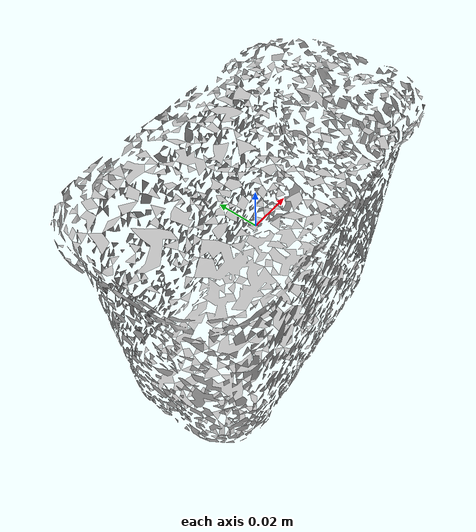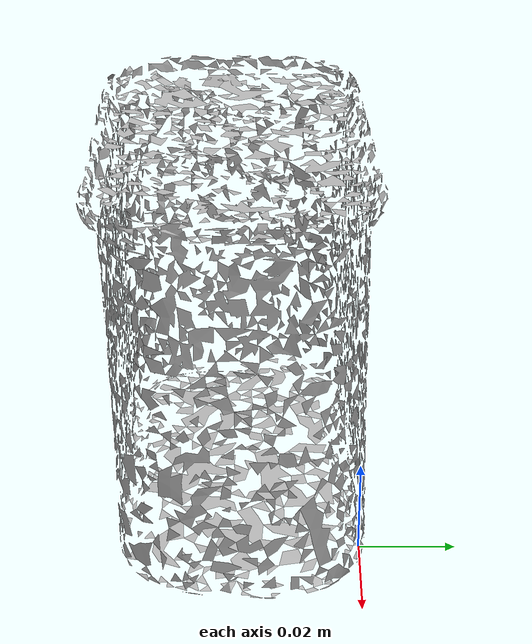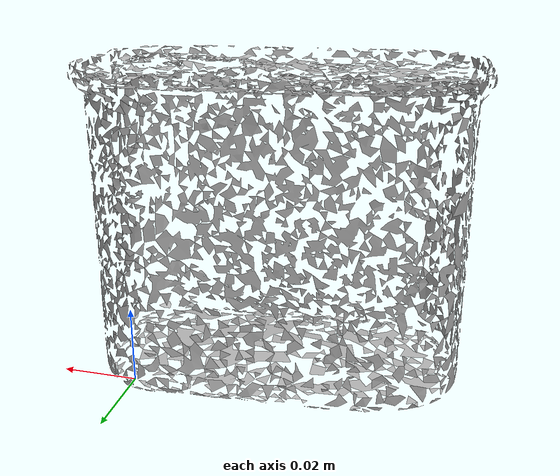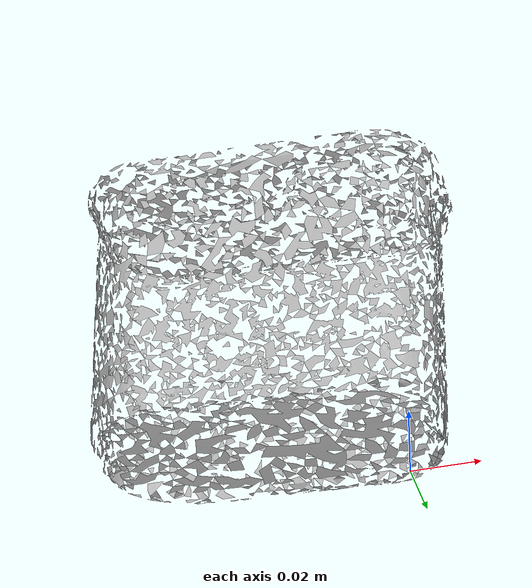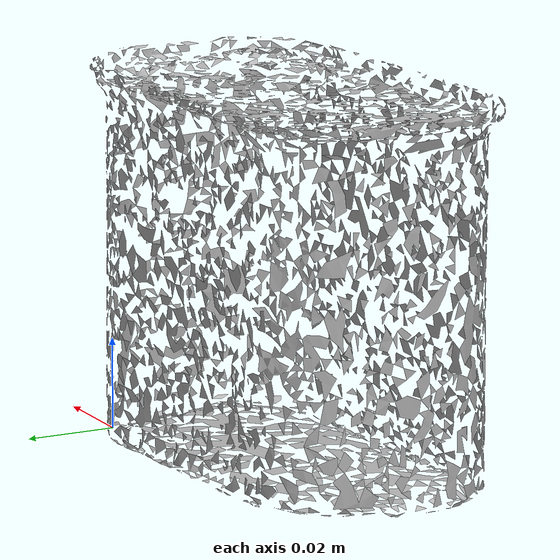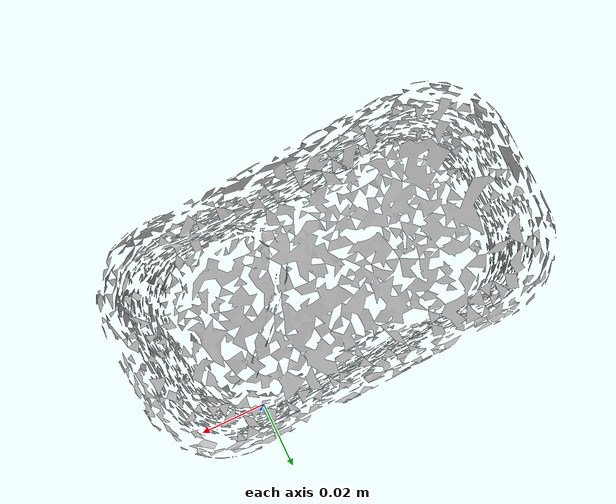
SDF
<?xml version='1.0'?>
<sdf version="1.4">
  <model name="potted_meat_can">
    <static>false</static>
    <link name="link">
      <inertial>
        <pose>-0.032840352216858736 -0.02635271439745596 0.03783085009135961 -1.577430392595329 -0.010759772887280422 1.6258710123374907</pose>
        <mass>0.37</mass>
        <inertia>
          <ixx>4.287366513749583e-07</ixx>
          <ixy>-3.523230610574534e-23</ixy>
          <ixz>-6.42864356711676e-24</ixz>
          <iyy>3.228086963634995e-07</iyy>
          <iyz>-7.370448672335376e-25</iyz>
          <izz>2.4925393166117206e-07</izz>
        </inertia>
      </inertial>
      <collision name="collision">
        <geometry>
          <mesh>
            <!-- Use a downsampled mesh for collisions -->
            <uri>model://010_potted_meat_can/downsampled.obj</uri>
	        </mesh>
        </geometry>
        <surface>
          <friction>
            <ode>
              <mu>0.8</mu>
              <mu2>0.6</mu2>
            </ode>
          </friction>
        </surface>
      </collision>
      <visual name="visual">
        <geometry>
          <mesh>
            <uri>model://010_potted_meat_can/google_16k/textured.obj</uri>
	        </mesh>
        </geometry>
        <material>
          <script>
            <uri>model://010_potted_meat_can/potted_meat_can.material</uri>
            <name>potted_meat_can</name>
          </script>
        </material>
      </visual>
    </link>
  </model>
</sdf>
